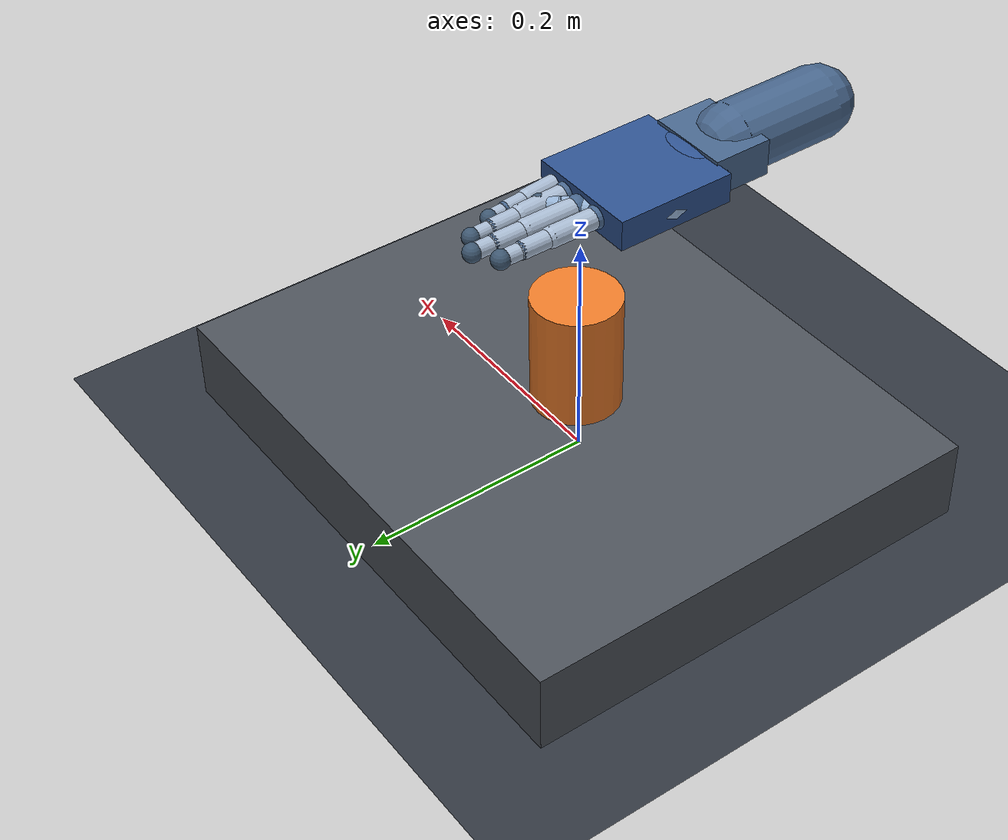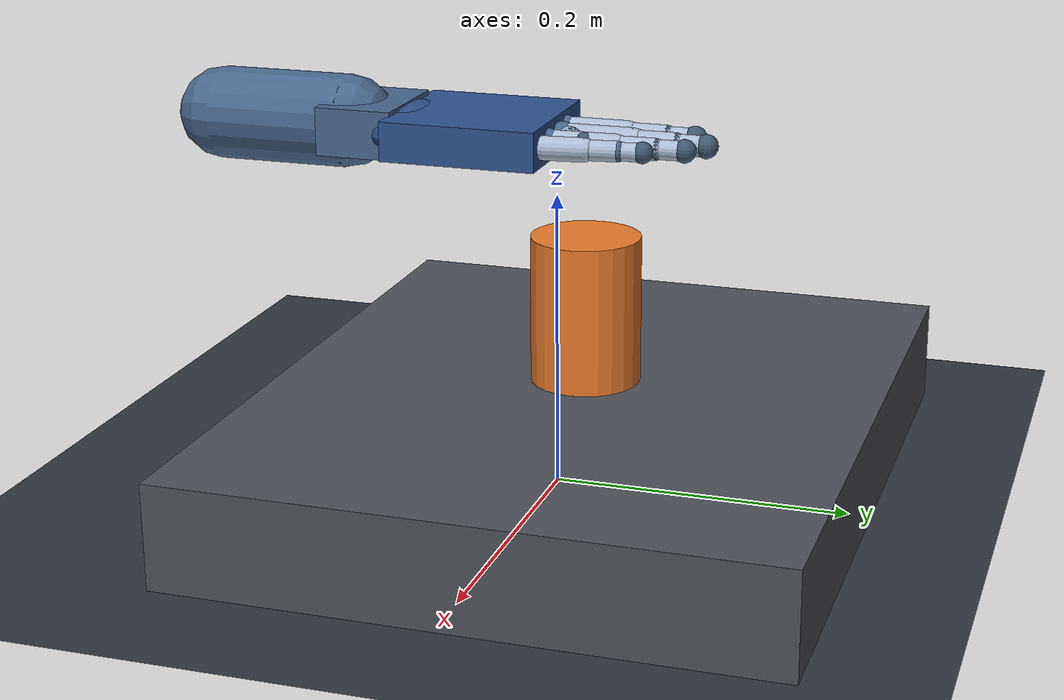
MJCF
<mujoco model="humanoid_virtual_dexterous_hand_v03_literature_informed">
  <compiler angle="radian" autolimits="true" />
  <option timestep="0.003" gravity="0 0 -9.81" integrator="implicitfast" />
  <statistic center="0 -0.005 0.17" extent="0.42" />
  <visual>
    <headlight ambient="0.30 0.30 0.30" diffuse="0.72 0.72 0.72" specular="0.18 0.18 0.18" />
    <rgba haze="0.10 0.14 0.18 1" />
  </visual>
  <asset>
    <texture name="floor_tex" type="2d" builtin="checker" rgb1="0.16 0.18 0.21" rgb2="0.22 0.25 0.29" width="512" height="512" />
    <material name="floor_mat" texture="floor_tex" texrepeat="6 6" reflectance="0.06" />
    <material name="palm_mat" rgba="0.18 0.32 0.56 1" />
    <material name="finger_mat" rgba="0.66 0.73 0.82 1" />
    <material name="joint_mat" rgba="0.28 0.40 0.55 1" />
    <material name="thumb_mat" rgba="0.58 0.69 0.82 1" />
    <material name="object_mat" rgba="0.92 0.48 0.16 1" />
    <material name="table_mat" rgba="0.30 0.32 0.35 1" />
    <material name="pad_mat" rgba="0.24 0.34 0.44 1" />
  </asset>
  <default>
    <joint damping="0.35" armature="0.003" />
    <geom friction="1.1 0.08 0.01" density="650" contype="1" conaffinity="1" condim="4" />
    <position kp="45" kv="2.4" />
  </default>
  <worldbody>
    <light name="key_light" pos="0 -0.20 0.72" dir="0 0 -1" diffuse="0.85 0.85 0.85" />
    <light name="fill_light" pos="0.30 0.18 0.42" dir="-0.5 -0.2 -1" diffuse="0.38 0.42 0.48" />
    <camera name="overview" mode="targetbody" target="palm" pos="0.30 -0.38 0.38" />
    <camera name="closeup" mode="targetbody" target="palm" pos="0.19 -0.24 0.30" />
    <camera name="side" mode="targetbody" target="palm" pos="0.34 0.02 0.27" />
    <geom name="floor" type="plane" size="0.60 0.60 0.02" material="floor_mat" />
    <body name="task_table" pos="0 0.015 0.035">
      <geom type="box" size="0.24 0.20 0.035" material="table_mat" contype="1" conaffinity="1" />
    </body>
    <body name="grasp_object" pos="-0.015 0.015 0.120">
      <freejoint name="grasp_object_free" />
      <geom name="task_object_geom" type="cylinder" size="0.037 0.050" material="object_mat" density="320" friction="1.35 0.12 0.01" />
      <site name="object_center" type="sphere" size="0.004" rgba="1 1 1 0.9" />
    </body>
    <body name="visual_guides" pos="0 0 0">
      <site name="pinch_focus" type="sphere" pos="-0.037 0.003 0.184" size="0.010" rgba="0.20 0.90 0.45 0" />
    </body>
    <body name="palm" pos="0 0 0.240">
      <geom name="palm_core" type="box" pos="0 -0.052 0" size="0.050 0.052 0.013" material="palm_mat" contype="1" conaffinity="1" friction="1.25 0.10 0.01" />
      <geom name="palm_heel" type="ellipsoid" pos="0 -0.101 0" size="0.046 0.022 0.015" material="palm_mat" contype="1" conaffinity="1" friction="1.25 0.10 0.01" />
      <geom name="thenar" type="ellipsoid" pos="-0.030 -0.052 -0.002" size="0.021 0.034 0.015" material="thumb_mat" contype="1" conaffinity="1" friction="1.25 0.10 0.01" />
      <geom name="hypothenar" type="ellipsoid" pos="0.031 -0.058 -0.002" size="0.017 0.031 0.014" material="finger_mat" contype="1" conaffinity="1" friction="1.25 0.10 0.01" />
      <geom name="wrist" type="box" pos="0 -0.128 0" size="0.036 0.026 0.016" material="joint_mat" contype="0" conaffinity="0" />
      <geom name="forearm" type="capsule" fromto="0 -0.145 0 0 -0.235 0" size="0.031" material="joint_mat" contype="0" conaffinity="0" />
      <body name="thumb1" pos="-0.033 -0.028 0" euler="0 0 -0.785398">
        <joint name="thumb_mcp" type="hinge" axis="-1 0 0" range="-0.174533 0.959931" />
        <geom type="sphere" pos="0 0 0" size="0.0100" material="joint_mat" />
        <geom type="capsule" fromto="0 0 0 0 0.032 0" size="0.0090" material="thumb_mat" />
        <body name="thumb2" pos="0 0.032 0">
          <joint name="thumb_pip" type="hinge" axis="-1 0 0" range="0 1.308997" />
          <geom type="sphere" size="0.0088" material="joint_mat" />
          <geom type="capsule" fromto="0 0 0 0 0.024 0" size="0.0080" material="thumb_mat" />
          <body name="thumb3" pos="0 0.024 0">
            <joint name="thumb_dip" type="hinge" axis="-1 0 0" range="0 1.134464" />
            <geom type="sphere" size="0.0078" material="joint_mat" />
            <geom type="capsule" fromto="0 0 0 0 0.018 0" size="0.0072" material="thumb_mat" />
            <site name="thumb_tip" type="sphere" pos="0 0.018 0" size="0.0085" rgba="0.95 0.18 0.20 1" />
            <geom name="thumb_pad" type="sphere" pos="0 0.018 0" size="0.0085" material="pad_mat" friction="1.45 0.14 0.01" solref="0.012 1" solimp="0.90 0.95 0.002" />
          </body>
        </body>
      </body>
      <body name="index1" pos="-0.019 0 0">
        <joint name="index_mcp" type="hinge" axis="-1 0 0" range="0 1.483530" stiffness="0.024106" springref="0" />
        <geom type="sphere" size="0.0095" material="joint_mat" />
        <geom type="capsule" fromto="0 0 0 0 0.042 0" size="0.0086" material="finger_mat" />
        <body name="index2" pos="0 0.042 0">
          <joint name="index_pip" type="hinge" axis="-1 0 0" range="0 1.658063" stiffness="0.012857" springref="0" />
          <geom type="sphere" size="0.0083" material="joint_mat" />
          <geom type="capsule" fromto="0 0 0 0 0.026 0" size="0.0075" material="finger_mat" />
          <body name="index3" pos="0 0.026 0">
            <joint name="index_dip" type="hinge" axis="-1 0 0" range="0 1.221730" stiffness="0.012857" springref="0" />
            <geom type="sphere" size="0.0074" material="joint_mat" />
            <geom type="capsule" fromto="0 0 0 0 0.019 0" size="0.0067" material="finger_mat" />
            <site name="index_tip" type="sphere" pos="0 0.019 0" size="0.0080" rgba="1.00 0.72 0.12 1" />
            <geom name="index_pad" type="sphere" pos="0 0.019 0" size="0.0080" material="pad_mat" friction="1.45 0.14 0.01" solref="0.012 1" solimp="0.90 0.95 0.002" />
          </body>
        </body>
      </body>
      <body name="middle1" pos="0 0.004 0">
        <joint name="middle_mcp" type="hinge" axis="-1 0 0" range="0 1.483530" stiffness="0.024106" springref="0" />
        <geom type="sphere" size="0.0097" material="joint_mat" />
        <geom type="capsule" fromto="0 0 0 0 0.047 0" size="0.0088" material="finger_mat" />
        <body name="middle2" pos="0 0.047 0">
          <joint name="middle_pip" type="hinge" axis="-1 0 0" range="0 1.658063" stiffness="0.012857" springref="0" />
          <geom type="sphere" size="0.0084" material="joint_mat" />
          <geom type="capsule" fromto="0 0 0 0 0.028 0" size="0.0076" material="finger_mat" />
          <body name="middle3" pos="0 0.028 0">
            <joint name="middle_dip" type="hinge" axis="-1 0 0" range="0 1.221730" stiffness="0.012857" springref="0" />
            <geom type="sphere" size="0.0075" material="joint_mat" />
            <geom type="capsule" fromto="0 0 0 0 0.020 0" size="0.0068" material="finger_mat" />
            <site name="middle_tip" type="sphere" pos="0 0.020 0" size="0.0078" rgba="0.20 0.76 0.95 1" />
            <geom name="middle_pad" type="sphere" pos="0 0.020 0" size="0.0078" material="pad_mat" friction="1.45 0.14 0.01" solref="0.012 1" solimp="0.90 0.95 0.002" />
          </body>
        </body>
      </body>
      <body name="ring1" pos="0.019 0 0" euler="0 0 0.034907">
        <joint name="ring_mcp" type="hinge" axis="-1 0 0" range="0 1.483530" stiffness="0.024106" springref="0" />
        <geom type="sphere" size="0.0093" material="joint_mat" />
        <geom type="capsule" fromto="0 0 0 0 0.044 0" size="0.0083" material="finger_mat" />
        <body name="ring2" pos="0 0.044 0">
          <joint name="ring_pip" type="hinge" axis="-1 0 0" range="0 1.658063" stiffness="0.012857" springref="0" />
          <geom type="sphere" size="0.0080" material="joint_mat" />
          <geom type="capsule" fromto="0 0 0 0 0.026 0" size="0.0072" material="finger_mat" />
          <body name="ring3" pos="0 0.026 0">
            <joint name="ring_dip" type="hinge" axis="-1 0 0" range="0 1.221730" stiffness="0.012857" springref="0" />
            <geom type="sphere" size="0.0071" material="joint_mat" />
            <geom type="capsule" fromto="0 0 0 0 0.019 0" size="0.0064" material="finger_mat" />
            <site name="ring_tip" type="sphere" pos="0 0.019 0" size="0.0075" rgba="0.20 0.76 0.95 1" />
            <geom name="ring_pad" type="sphere" pos="0 0.019 0" size="0.0075" material="pad_mat" friction="1.45 0.14 0.01" solref="0.012 1" solimp="0.90 0.95 0.002" />
          </body>
        </body>
      </body>
      <body name="little1" pos="0.035 -0.007 0" euler="0 0 0.104720">
        <joint name="little_mcp" type="hinge" axis="-1 0 0" range="0 1.570796" stiffness="0.024106" springref="0" />
        <geom type="sphere" size="0.0087" material="joint_mat" />
        <geom type="capsule" fromto="0 0 0 0 0.035 0" size="0.0078" material="finger_mat" />
        <body name="little2" pos="0 0.035 0">
          <joint name="little_pip" type="hinge" axis="-1 0 0" range="0 1.658063" stiffness="0.012857" springref="0" />
          <geom type="sphere" size="0.0075" material="joint_mat" />
          <geom type="capsule" fromto="0 0 0 0 0.021 0" size="0.0067" material="finger_mat" />
          <body name="little3" pos="0 0.021 0">
            <joint name="little_dip" type="hinge" axis="-1 0 0" range="0 1.221730" stiffness="0.012857" springref="0" />
            <geom type="sphere" size="0.0067" material="joint_mat" />
            <geom type="capsule" fromto="0 0 0 0 0.016 0" size="0.0060" material="finger_mat" />
            <site name="little_tip" type="sphere" pos="0 0.016 0" size="0.0070" rgba="0.20 0.76 0.95 1" />
            <geom name="little_pad" type="sphere" pos="0 0.016 0" size="0.0070" material="pad_mat" friction="1.45 0.14 0.01" solref="0.012 1" solimp="0.90 0.95 0.002" />
          </body>
        </body>
      </body>
    </body>
  </worldbody>
  <tendon>
    <fixed name="index_flexor_tendon" limited="false" width="0.002" rgba="0.85 0.25 0.18 0.35">
      <joint joint="index_mcp" coef="1.0" />
      <joint joint="index_pip" coef="0.78" />
      <joint joint="index_dip" coef="0.56" />
    </fixed>
    <fixed name="middle_flexor_tendon" limited="false" width="0.002" rgba="0.85 0.25 0.18 0.35">
      <joint joint="middle_mcp" coef="1.0" />
      <joint joint="middle_pip" coef="0.8" />
      <joint joint="middle_dip" coef="0.58" />
    </fixed>
    <fixed name="ring_flexor_tendon" limited="false" width="0.002" rgba="0.85 0.25 0.18 0.35">
      <joint joint="ring_mcp" coef="1.0" />
      <joint joint="ring_pip" coef="0.82" />
      <joint joint="ring_dip" coef="0.6" />
    </fixed>
    <fixed name="little_flexor_tendon" limited="false" width="0.002" rgba="0.85 0.25 0.18 0.35">
      <joint joint="little_mcp" coef="1.0" />
      <joint joint="little_pip" coef="0.84" />
      <joint joint="little_dip" coef="0.62" />
    </fixed>
  </tendon>
  <actuator>
    <position name="act_thumb_mcp" joint="thumb_mcp" ctrlrange="-0.174533 0.959931" kp="45" kv="2.4" />
    <position name="act_thumb_pip" joint="thumb_pip" ctrlrange="0.000000 1.308997" kp="45" kv="2.4" />
    <position name="act_thumb_dip" joint="thumb_dip" ctrlrange="0.000000 1.134464" kp="45" kv="2.4" />
    <position name="act_index_flexor" tendon="index_flexor_tendon" ctrlrange="0 3.460988" kp="22" kv="1.6" />
    <position name="act_middle_flexor" tendon="middle_flexor_tendon" ctrlrange="0 3.518584" kp="22" kv="1.6" />
    <position name="act_ring_flexor" tendon="ring_flexor_tendon" ctrlrange="0 3.576180" kp="22" kv="1.6" />
    <position name="act_little_flexor" tendon="little_flexor_tendon" ctrlrange="0 3.721042" kp="22" kv="1.6" />
  </actuator>
</mujoco>
